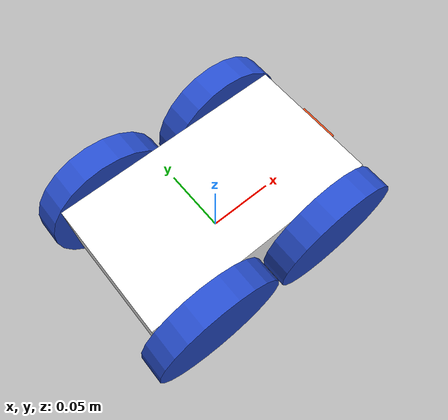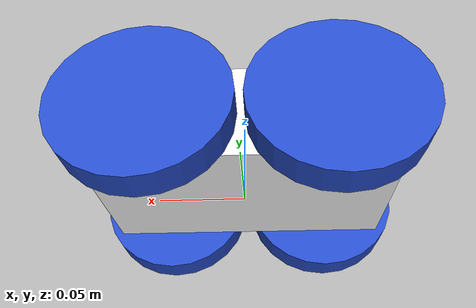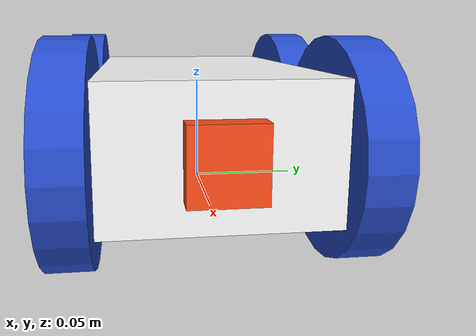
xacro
<?xml version="1.0"?>
<robot xmlns:xacro="http://www.ros.org/wiki/xacro"  name="robot">

    <xacro:arg name="sim_mode" default="false" />

    <xacro:include filename="robot_core.xacro"/>

    <xacro:include filename="ros2_control.xacro" />
    <xacro:include filename="camera.xacro" />
</robot>

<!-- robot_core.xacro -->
<robot xmlns:xacro="http://www.ros.org/wiki/xacro">
    <xacro:include filename="inertial_macros.xacro"/>

    <material name="white">
        <color rgba="1 1 1 1"/>
    </material>

    <material name="orange">
        <color rgba="1 0.3 0.1 1"/>
    </material>

    <material name="blue">
        <color rgba="0.2 0.2 1 1"/>
    </material>

    <material name="black">
        <color rgba="0 0 0 1"/>
    </material>

    <!-- BASE LINK -->
    <link name="base_link">

    </link>

    <!-- CHASSIS LINK -->
    <joint name="chassis_joint" type="fixed">
        <parent link="base_link"/>
        <child link="chassis"/>
        <origin xyz="-0.085 0.0 0.0"/>
    </joint>

    <link name="chassis">
        <visual>
            <origin xyz="0.085 0.0 0.029"/>
            <geometry>
                <box size="0.17 0.095 0.058"/>
            </geometry>
            <material name="white"/>
        </visual>
        <collision>
            <origin xyz="0.085 0.0 0.029"/>
            <geometry>
                <box size="0.17 0.095 0.058"/>
            </geometry>
        </collision>
        <xacro:inertial_box mass="0.5" x="0.17" y="0.095" z="0.058">
            <origin xyz="0.085 0.0 0.02995"/>
        </xacro:inertial_box>
    </link>

    <gazebo reference="chassis">
        <material>Gazebo/White</material>
    </gazebo>

    <!-- LEFT FRONT WHEEL LINK -->
    <joint name="left_front_wheel_joint" type="continuous">
        <parent link="base_link"/>
        <child link="left_front_wheel"/>
        <origin xyz="0.05 0.058 0.025" rpy="-${pi/2} 0.0 0.0"/>
        <axis xyz="0.0 0.0 1.0" rpy="0.0 0.0 0.0"/>
    </joint>

    <link name="left_front_wheel">
        <visual>
            <geometry>
                <cylinder radius="0.048" length="0.019"/>
                <material name="blue"/>
            </geometry>
        </visual>
        <collision>
            <geometry>
                <sphere radius="0.048" />
            </geometry>
        </collision>
        <xacro:inertial_cylinder mass="0.1" length="0.019" radius="0.048">
            <origin xyz="0 0 0" rpy="0 0 0" />
        </xacro:inertial_cylinder>
    </link>

    <gazebo reference="left_front_wheel">
        <material>Gazebo/Blue</material>
        <mu1 value="1.0"/>
        <mu2 value="0.001" />
    </gazebo>

    <!-- LEFT REAR WHEEL LINK -->
    <joint name="left_rear_wheel_joint" type="fixed">
        <parent link="base_link"/>
        <child link="left_rear_wheel"/>
        <origin xyz="-0.05 0.058 0.025" rpy="-${pi/2} 0.0 0.0"/>
        <axis xyz="0.0 0.0 1.0"/>
    </joint>

    <link name="left_rear_wheel">
        <visual>
            <geometry>
                <cylinder radius="0.048" length="0.019"/>
                <material name="blue"/>
            </geometry>
        </visual>
        <collision>
            <geometry>
                <sphere radius="0.048"/>
            </geometry>
        </collision>
        <xacro:inertial_cylinder mass="0.1" length="0.019" radius="0.048">
            <origin xyz="0 0 0" rpy="0 0 0" />
        </xacro:inertial_cylinder>
    </link>

    <gazebo reference="left_rear_wheel">
        <material>Gazebo/Blue</material>
        <mu1 value="1.0"/>
        <mu2 value="0.001" />
    </gazebo>

    <!-- RIGHT FRONT WHEEL LINK -->
    <joint name="right_front_wheel_joint" type="continuous">
        <parent link="base_link"/>
        <child link="right_front_wheel"/>
        <origin xyz="0.05 -0.058 0.025" rpy="${pi/2} 0.0 0.0"/>
        <axis xyz="0.0 0.0 -1.0"/>
    </joint>

    <link name="right_front_wheel">
        <visual>
            <geometry>
                <cylinder radius="0.048" length="0.019"/>
                <material name="blue"/>
            </geometry>
        </visual>
        <collision>
            <geometry>
                <sphere radius="0.048" />
            </geometry>
        </collision>
        <xacro:inertial_cylinder mass="0.1" length="0.019" radius="0.048">
            <origin xyz="0 0 0" rpy="0 0 0" />
        </xacro:inertial_cylinder>
    </link>

    <gazebo reference="right_front_wheel">
        <material>Gazebo/Blue</material>
        <mu1 value="1.0"/>
        <mu2 value="0.001" />
    </gazebo>

   <!-- RIGHT REAR WHEEL LINK -->
    <joint name="right_rear_wheel_joint" type="fixed">
        <parent link="base_link"/>
        <child link="right_rear_wheel"/>
        <origin xyz="-0.05 -0.058 0.025" rpy="${pi/2} 0.0 0.0"/>
        <axis xyz="0.0 0.0 -1.0"/>
    </joint>

    <link name="right_rear_wheel">
        <visual>
            <geometry>
                <cylinder radius="0.048" length="0.019"/>
                <material name="blue"/>
            </geometry>
        </visual>
        <collision>
            <geometry>
                <sphere radius="0.048" />
            </geometry>
        </collision>
        <xacro:inertial_cylinder mass="0.1" length="0.019" radius="0.048">
            <origin xyz="0 0 0" rpy="0 0 0" />
        </xacro:inertial_cylinder>
   </link>

    <gazebo reference="right_rear_wheel">
        <material>Gazebo/Blue</material>
        <mu1 value="1.0"/>
        <mu2 value="0.001" />
    </gazebo>
</robot>

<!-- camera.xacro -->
<robot xmlns:xacro="http://www.ros.org/wiki/xacro"  name="robot">
    <joint name="camera_joint" type="fixed">
        <parent link="chassis"/>
        <child link="camera_link"/>
        <origin xyz="0.175 0.0 0.029" rpy="0.0 0.0 0.0"/>
    </joint>

    <link name="camera_link">
        <visual>
            <geometry>
                <box size="0.010 0.03 0.03"/>
            </geometry>
            <material name="orange" />
        </visual>
    </link>

    <joint name="camera_optical_joint" type="fixed">
        <parent link="camera_link"/>
        <child link="camera_link_optical"/>
        <origin xyz="0.0 0.0 0.0" rpy="${-pi/2} 0.0 ${-pi/2}"/>
    </joint>

    <link name="camera_link_optical"></link>

    <gazebo reference="camera_link">
        <material>Gazebo/Red</material>

        <sensor name="camera" type="camera">
            <pose> 0 0 0 0 0 0 </pose>
            <visualize>true</visualize>
            <update_rate>10</update_rate>
            <camera>
                <horizontal_fov>1.089</horizontal_fov>
                <image>
                    <format>R8GG8B8</format>
                    <width>640</width>
                    <height>480</height>
                </image>
                <clip>
                    <near>0.05</near>
                    <far>8.0</far>
                </clip>
            </camera>
            <plugin name="camera_controller" filename="libgazebo_ros_camera.so">
                <frame_name>camera_link_optical</frame_name>
            </plugin>
        </sensor>
    </gazebo>
</robot>
